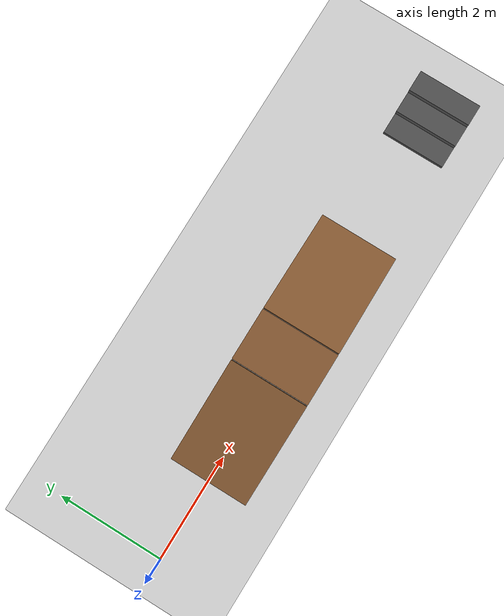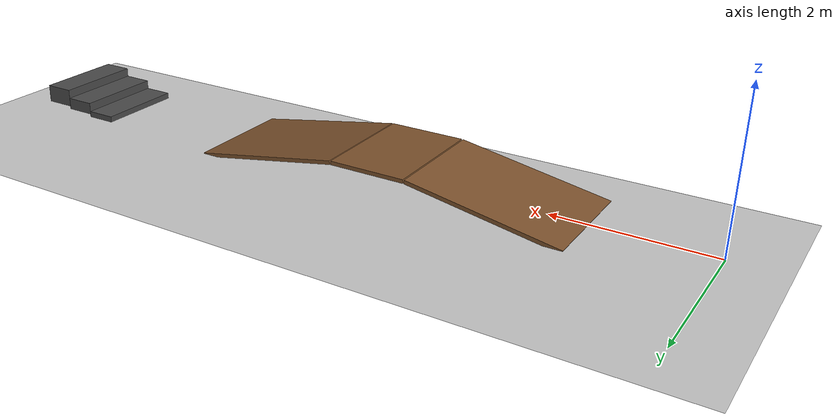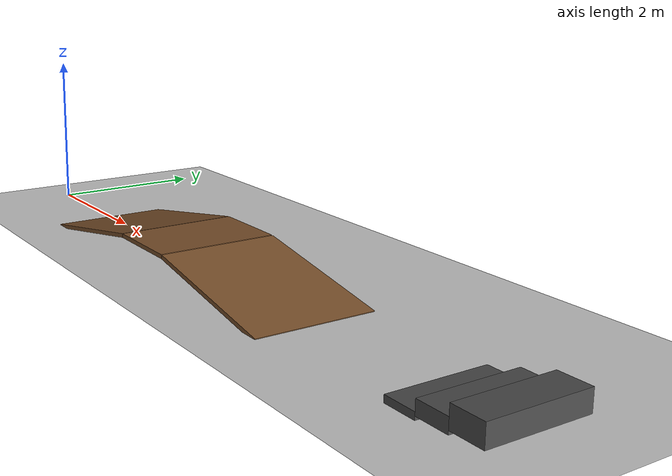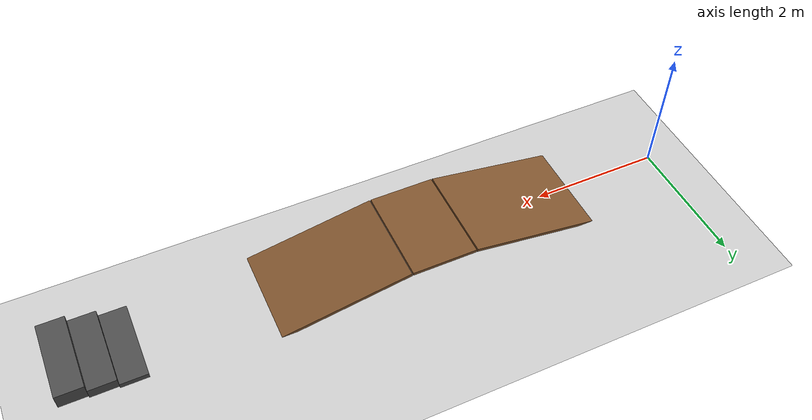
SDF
<?xml version="1.0" ?>
<!-- 台阶 + 斜坡场景：测试爬台阶、上下坡稳定性 -->
<sdf version="1.5">
    <world name="stairs">
        <physics type="ode">
            <type>world</type>
            <max_step_size>0.001</max_step_size>
            <real_time_update_rate>1000</real_time_update_rate>
            <iters>500</iters>
        </physics>

        <include><uri>model://sun</uri></include>
        <include><uri>model://ground_plane</uri></include>

        <!-- ======== 上坡（10 度） ======== -->
        <model name="ramp_up">
            <static>true</static>
            <!-- pose: x y z roll pitch yaw  (pitch 负值 = 向上翘) -->
            <pose>2.5 0.0 0.15 0 -0.1745 0</pose>
            <link name="link">
                <collision name="collision">
                    <geometry><box><size>2.0 1.5 0.05</size></box></geometry>
                    <surface><friction><ode><mu>1.2</mu><mu2>1.2</mu2></ode></friction></surface>
                </collision>
                <visual name="visual">
                    <geometry><box><size>2.0 1.5 0.05</size></box></geometry>
                    <material><script><uri>file://media/materials/scripts/gazebo.material</uri>
                        <name>Gazebo/Brown</name></script></material>
                </visual>
            </link>
        </model>

        <!-- ======== 平台 ======== -->
        <model name="platform_top">
            <static>true</static>
            <pose>4.0 0.0 0.325 0 0 0</pose>
            <link name="link">
                <collision name="collision">
                    <geometry><box><size>1.0 1.5 0.05</size></box></geometry>
                    <surface><friction><ode><mu>1.2</mu><mu2>1.2</mu2></ode></friction></surface>
                </collision>
                <visual name="visual">
                    <geometry><box><size>1.0 1.5 0.05</size></box></geometry>
                    <material><script><uri>file://media/materials/scripts/gazebo.material</uri>
                        <name>Gazebo/Brown</name></script></material>
                </visual>
            </link>
        </model>

        <!-- ======== 下坡 ======== -->
        <model name="ramp_down">
            <static>true</static>
            <pose>5.5 0.0 0.15 0 0.1745 0</pose>
            <link name="link">
                <collision name="collision">
                    <geometry><box><size>2.0 1.5 0.05</size></box></geometry>
                    <surface><friction><ode><mu>1.2</mu><mu2>1.2</mu2></ode></friction></surface>
                </collision>
                <visual name="visual">
                    <geometry><box><size>2.0 1.5 0.05</size></box></geometry>
                    <material><script><uri>file://media/materials/scripts/gazebo.material</uri>
                        <name>Gazebo/Brown</name></script></material>
                </visual>
            </link>
        </model>

        <!-- ======== 独立台阶（3 级，每级 8cm） ======== -->
        <model name="step_1">
            <static>true</static>
            <pose>8.5 0.0 0.04 0 0 0</pose>
            <link name="link">
                <collision name="collision"><geometry><box><size>0.4 1.2 0.08</size></box></geometry>
                    <surface><friction><ode><mu>1.2</mu><mu2>1.2</mu2></ode></friction></surface>
                </collision>
                <visual name="visual"><geometry><box><size>0.4 1.2 0.08</size></box></geometry>
                    <material><script><uri>file://media/materials/scripts/gazebo.material</uri>
                        <name>Gazebo/DarkGrey</name></script></material></visual>
            </link>
        </model>

        <model name="step_2">
            <static>true</static>
            <pose>8.9 0.0 0.12 0 0 0</pose>
            <link name="link">
                <collision name="collision"><geometry><box><size>0.4 1.2 0.16</size></box></geometry>
                    <surface><friction><ode><mu>1.2</mu><mu2>1.2</mu2></ode></friction></surface>
                </collision>
                <visual name="visual"><geometry><box><size>0.4 1.2 0.16</size></box></geometry>
                    <material><script><uri>file://media/materials/scripts/gazebo.material</uri>
                        <name>Gazebo/DarkGrey</name></script></material></visual>
            </link>
        </model>

        <model name="step_3">
            <static>true</static>
            <pose>9.3 0.0 0.2 0 0 0</pose>
            <link name="link">
                <collision name="collision"><geometry><box><size>0.4 1.2 0.24</size></box></geometry>
                    <surface><friction><ode><mu>1.2</mu><mu2>1.2</mu2></ode></friction></surface>
                </collision>
                <visual name="visual"><geometry><box><size>0.4 1.2 0.24</size></box></geometry>
                    <material><script><uri>file://media/materials/scripts/gazebo.material</uri>
                        <name>Gazebo/DarkGrey</name></script></material></visual>
            </link>
        </model>

    </world>
</sdf>
